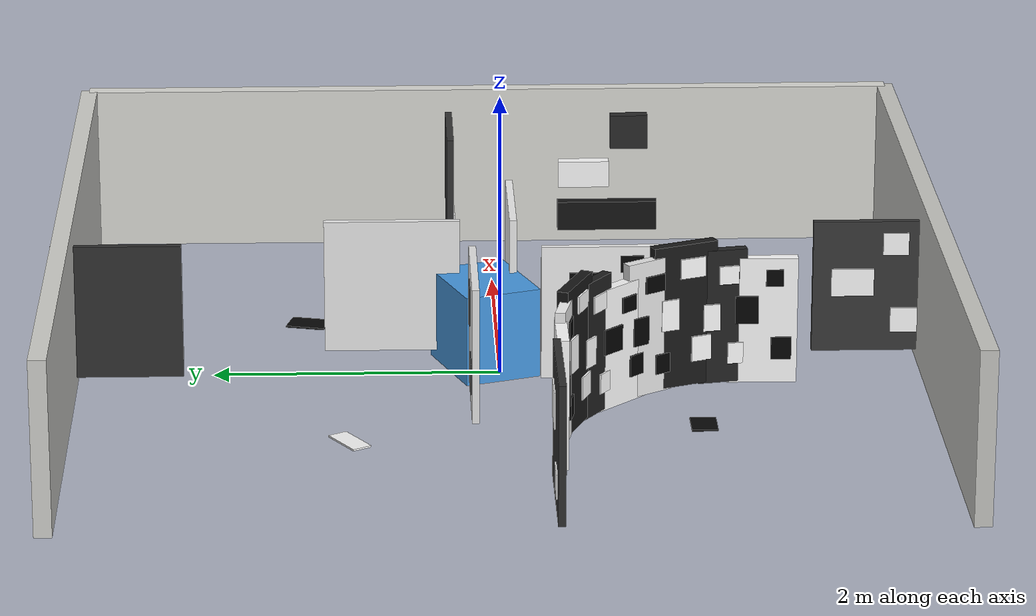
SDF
<sdf version="1.7">
 <world name="cuvslam_mapping_simple">
  <model name="north_wall">
   <static>true</static>
   <pose>0 3 0.6 0 0 0</pose>
   <link name="link">
    <collision name="collision"><geometry><box><size>6 0.12 1.2</size></box></geometry></collision>
    <visual name="visual">
     <geometry><box><size>6 0.12 1.2</size></box></geometry>
     <material><ambient>0.72 0.72 0.70 1</ambient><diffuse>0.82 0.82 0.80 1</diffuse></material>
    </visual>
   </link>
  </model>
  <model name="south_wall">
   <static>true</static>
   <pose>0 -3 0.6 0 0 0</pose>
   <link name="link">
    <collision name="collision"><geometry><box><size>6 0.12 1.2</size></box></geometry></collision>
    <visual name="visual">
     <geometry><box><size>6 0.12 1.2</size></box></geometry>
     <material><ambient>0.68 0.68 0.66 1</ambient><diffuse>0.78 0.78 0.76 1</diffuse></material>
    </visual>
   </link>
  </model>
  <model name="east_wall">
   <static>true</static>
   <pose>3 0 0.6 0 0 0</pose>
   <link name="link">
    <collision name="collision"><geometry><box><size>0.12 6 1.2</size></box></geometry></collision>
    <visual name="visual">
     <geometry><box><size>0.12 6 1.2</size></box></geometry>
     <material><ambient>0.76 0.76 0.74 1</ambient><diffuse>0.86 0.86 0.84 1</diffuse></material>
    </visual>
   </link>
  </model>
  <model name="east_landmark_stack">
   <static>true</static>
   <pose>2.90 -0.9 0 0 0 0</pose>
   <link name="link">
    <visual name="lower">
     <pose>0 0 0.22 0 0 0</pose>
     <geometry><box><size>0.10 0.75 0.22</size></box></geometry>
     <material><ambient>0.05 0.05 0.05 1</ambient><diffuse>0.08 0.08 0.08 1</diffuse></material>
    </visual>
    <visual name="middle">
     <pose>0 0.18 0.55 0 0 0</pose>
     <geometry><box><size>0.10 0.38 0.20</size></box></geometry>
     <material><ambient>0.95 0.95 0.95 1</ambient><diffuse>1 1 1 1</diffuse></material>
    </visual>
    <visual name="upper">
     <pose>0 -0.16 0.88 0 0 0</pose>
     <geometry><box><size>0.10 0.28 0.26</size></box></geometry>
     <material><ambient>0.12 0.12 0.12 1</ambient><diffuse>0.16 0.16 0.16 1</diffuse></material>
    </visual>
   </link>
  </model>
  <model name="center_crate">
   <static>true</static>
   <pose>0.15 0.10 0.32 0 0 0.35</pose>
   <link name="link">
    <collision name="collision"><geometry><box><size>0.70 0.55 0.64</size></box></geometry></collision>
    <visual name="visual">
     <geometry><box><size>0.70 0.55 0.64</size></box></geometry>
     <material><ambient>0.22 0.48 0.72 1</ambient><diffuse>0.28 0.60 0.88 1</diffuse></material>
    </visual>
   </link>
  </model>
  <model name="near_field_observability_boards">
   <static>true</static>
   <link name="link">
    <visual name="left_board">
     <pose>-0.30 -0.75 0.55 0 0 0</pose>
     <geometry><box><size>0.05 0.95 0.95</size></box></geometry>
     <material><ambient>0.88 0.88 0.88 1</ambient><diffuse>0.95 0.95 0.95 1</diffuse></material>
    </visual>
    <visual name="left_black_a">
     <pose>-0.328 -0.98 0.34 0 0 0</pose>
     <geometry><box><size>0.012 0.28 0.24</size></box></geometry>
     <material><ambient>0.02 0.02 0.02 1</ambient><diffuse>0.02 0.02 0.02 1</diffuse></material>
    </visual>
    <visual name="left_black_b">
     <pose>-0.328 -0.58 0.68 0 0 0</pose>
     <geometry><box><size>0.012 0.22 0.32</size></box></geometry>
     <material><ambient>0.02 0.02 0.02 1</ambient><diffuse>0.02 0.02 0.02 1</diffuse></material>
    </visual>
    <visual name="left_black_c">
     <pose>-0.328 -0.90 0.90 0 0 0</pose>
     <geometry><box><size>0.012 0.16 0.12</size></box></geometry>
     <material><ambient>0.02 0.02 0.02 1</ambient><diffuse>0.02 0.02 0.02 1</diffuse></material>
    </visual>
    <visual name="right_board">
     <pose>0.20 -2.65 0.55 0 0 0</pose>
     <geometry><box><size>0.05 0.90 0.95</size></box></geometry>
     <material><ambient>0.18 0.18 0.18 1</ambient><diffuse>0.22 0.22 0.22 1</diffuse></material>
    </visual>
    <visual name="right_white_a">
     <pose>0.172 -2.87 0.30 0 0 0</pose>
     <geometry><box><size>0.012 0.24 0.18</size></box></geometry>
     <material><ambient>0.98 0.98 0.98 1</ambient><diffuse>1 1 1 1</diffuse></material>
    </visual>
    <visual name="right_white_b">
     <pose>0.172 -2.48 0.58 0 0 0</pose>
     <geometry><box><size>0.012 0.30 0.20</size></box></geometry>
     <material><ambient>0.98 0.98 0.98 1</ambient><diffuse>1 1 1 1</diffuse></material>
    </visual>
    <visual name="right_white_c">
     <pose>0.172 -2.78 0.86 0 0 0</pose>
     <geometry><box><size>0.012 0.18 0.16</size></box></geometry>
     <material><ambient>0.98 0.98 0.98 1</ambient><diffuse>1 1 1 1</diffuse></material>
    </visual>
    <visual name="north_inner_board">
     <pose>0.75 -0.10 0.55 0 0 0</pose>
     <geometry><box><size>0.95 0.05 0.95</size></box></geometry>
     <material><ambient>0.86 0.86 0.86 1</ambient><diffuse>0.94 0.94 0.94 1</diffuse></material>
    </visual>
    <visual name="north_inner_black_a">
     <pose>0.52 -0.128 0.34 0 0 0</pose>
     <geometry><box><size>0.26 0.012 0.22</size></box></geometry>
     <material><ambient>0.02 0.02 0.02 1</ambient><diffuse>0.02 0.02 0.02 1</diffuse></material>
    </visual>
    <visual name="north_inner_black_b">
     <pose>0.92 -0.128 0.70 0 0 0</pose>
     <geometry><box><size>0.20 0.012 0.30</size></box></geometry>
     <material><ambient>0.02 0.02 0.02 1</ambient><diffuse>0.02 0.02 0.02 1</diffuse></material>
    </visual>
    <visual name="north_outer_board">
     <pose>2.65 0.30 0.55 0 0 0</pose>
     <geometry><box><size>0.90 0.05 0.95</size></box></geometry>
     <material><ambient>0.16 0.16 0.16 1</ambient><diffuse>0.20 0.20 0.20 1</diffuse></material>
    </visual>
    <visual name="north_outer_white_a">
     <pose>2.43 0.272 0.32 0 0 0</pose>
     <geometry><box><size>0.24 0.012 0.18</size></box></geometry>
     <material><ambient>0.98 0.98 0.98 1</ambient><diffuse>1 1 1 1</diffuse></material>
    </visual>
    <visual name="north_outer_white_b">
     <pose>2.82 0.272 0.67 0 0 0</pose>
     <geometry><box><size>0.28 0.012 0.24</size></box></geometry>
     <material><ambient>0.98 0.98 0.98 1</ambient><diffuse>1 1 1 1</diffuse></material>
    </visual>
    <visual name="west_inner_board">
     <pose>0.30 0.75 0.55 0 0 0</pose>
     <geometry><box><size>0.05 0.95 0.95</size></box></geometry>
     <material><ambient>0.84 0.84 0.84 1</ambient><diffuse>0.92 0.92 0.92 1</diffuse></material>
    </visual>
    <visual name="west_inner_black_a">
     <pose>0.328 0.52 0.33 0 0 0</pose>
     <geometry><box><size>0.012 0.25 0.20</size></box></geometry>
     <material><ambient>0.02 0.02 0.02 1</ambient><diffuse>0.02 0.02 0.02 1</diffuse></material>
    </visual>
    <visual name="west_inner_black_b">
     <pose>0.328 0.92 0.70 0 0 0</pose>
     <geometry><box><size>0.012 0.19 0.30</size></box></geometry>
     <material><ambient>0.02 0.02 0.02 1</ambient><diffuse>0.02 0.02 0.02 1</diffuse></material>
    </visual>
    <visual name="west_outer_board">
     <pose>-0.20 2.65 0.55 0 0 0</pose>
     <geometry><box><size>0.05 0.90 0.95</size></box></geometry>
     <material><ambient>0.15 0.15 0.15 1</ambient><diffuse>0.19 0.19 0.19 1</diffuse></material>
    </visual>
    <visual name="west_outer_white_a">
     <pose>-0.172 2.43 0.31 0 0 0</pose>
     <geometry><box><size>0.012 0.24 0.18</size></box></geometry>
     <material><ambient>0.98 0.98 0.98 1</ambient><diffuse>1 1 1 1</diffuse></material>
    </visual>
    <visual name="west_outer_white_b">
     <pose>-0.172 2.82 0.70 0 0 0</pose>
     <geometry><box><size>0.012 0.26 0.26</size></box></geometry>
     <material><ambient>0.98 0.98 0.98 1</ambient><diffuse>1 1 1 1</diffuse></material>
    </visual>
    <visual name="south_inner_board">
     <pose>-0.75 0.20 0.55 0 0 0</pose>
     <geometry><box><size>0.95 0.05 0.95</size></box></geometry>
     <material><ambient>0.82 0.82 0.82 1</ambient><diffuse>0.90 0.90 0.90 1</diffuse></material>
    </visual>
    <visual name="south_inner_black_a">
     <pose>-0.98 0.228 0.35 0 0 0</pose>
     <geometry><box><size>0.27 0.012 0.22</size></box></geometry>
     <material><ambient>0.02 0.02 0.02 1</ambient><diffuse>0.02 0.02 0.02 1</diffuse></material>
    </visual>
    <visual name="south_inner_black_b">
     <pose>-0.58 0.228 0.72 0 0 0</pose>
     <geometry><box><size>0.20 0.012 0.28</size></box></geometry>
     <material><ambient>0.02 0.02 0.02 1</ambient><diffuse>0.02 0.02 0.02 1</diffuse></material>
    </visual>
    <visual name="south_outer_board">
     <pose>-2.65 -0.30 0.55 0 0 0</pose>
     <geometry><box><size>0.90 0.05 0.95</size></box></geometry>
     <material><ambient>0.14 0.14 0.14 1</ambient><diffuse>0.18 0.18 0.18 1</diffuse></material>
    </visual>
    <visual name="south_outer_white_a">
     <pose>-2.87 -0.272 0.30 0 0 0</pose>
     <geometry><box><size>0.23 0.012 0.17</size></box></geometry>
     <material><ambient>0.98 0.98 0.98 1</ambient><diffuse>1 1 1 1</diffuse></material>
    </visual>
    <visual name="south_outer_white_b">
     <pose>-2.48 -0.272 0.68 0 0 0</pose>
     <geometry><box><size>0.29 0.012 0.25</size></box></geometry>
     <material><ambient>0.98 0.98 0.98 1</ambient><diffuse>1 1 1 1</diffuse></material>
    </visual>
    <visual name="floor_marker_a">
     <pose>-1.10 -1.35 0.008 0 0 0</pose>
     <geometry><box><size>0.24 0.18 0.012</size></box></geometry>
     <material><ambient>0.03 0.03 0.03 1</ambient><diffuse>0.03 0.03 0.03 1</diffuse></material>
    </visual>
    <visual name="floor_marker_b">
     <pose>1.35 -1.10 0.008 0 0 0.35</pose>
     <geometry><box><size>0.30 0.16 0.012</size></box></geometry>
     <material><ambient>0.94 0.94 0.94 1</ambient><diffuse>0.98 0.98 0.98 1</diffuse></material>
    </visual>
    <visual name="floor_marker_c">
     <pose>1.05 1.35 0.008 0 0 -0.25</pose>
     <geometry><box><size>0.20 0.28 0.012</size></box></geometry>
     <material><ambient>0.03 0.03 0.03 1</ambient><diffuse>0.03 0.03 0.03 1</diffuse></material>
    </visual>
    <visual name="floor_marker_d">
     <pose>-1.35 1.05 0.008 0 0 0.55</pose>
     <geometry><box><size>0.32 0.14 0.012</size></box></geometry>
     <material><ambient>0.94 0.94 0.94 1</ambient><diffuse>0.98 0.98 0.98 1</diffuse></material>
    </visual>
   </link>
  </model>
  <model name="dense_turn_feature_arc">
   <static>true</static>
   <link name="panel_east">
    <pose>-0.35 -1.80 0.50 0 0 0</pose>
    <visual name="panel">
     <geometry><box><size>0.08 0.48 0.90</size></box></geometry>
     <material><ambient>0.92 0.92 0.92 1</ambient><diffuse>1 1 1 1</diffuse></material>
    </visual>
    <visual name="patch_a">
     <pose>-0.046 -0.13 -0.20 0 0 0</pose>
     <geometry><box><size>0.012 0.14 0.16</size></box></geometry>
     <material><ambient>0.02 0.02 0.02 1</ambient><diffuse>0.02 0.02 0.02 1</diffuse></material>
    </visual>
    <visual name="patch_b">
     <pose>-0.046 0.11 0.08 0 0 0</pose>
     <geometry><box><size>0.012 0.16 0.20</size></box></geometry>
     <material><ambient>0.02 0.02 0.02 1</ambient><diffuse>0.02 0.02 0.02 1</diffuse></material>
    </visual>
    <visual name="patch_c">
     <pose>-0.046 -0.08 0.31 0 0 0</pose>
     <geometry><box><size>0.012 0.12 0.12</size></box></geometry>
     <material><ambient>0.02 0.02 0.02 1</ambient><diffuse>0.02 0.02 0.02 1</diffuse></material>
    </visual>
   </link>
   <link name="panel_northeast_low">
    <pose>-0.46 -1.245 0.58 0 0 0.392699</pose>
    <visual name="panel">
     <geometry><box><size>0.08 0.48 1.02</size></box></geometry>
     <material><ambient>0.08 0.08 0.08 1</ambient><diffuse>0.10 0.10 0.10 1</diffuse></material>
    </visual>
    <visual name="patch_a">
     <pose>-0.046 -0.12 -0.25 0 0 0</pose>
     <geometry><box><size>0.012 0.15 0.18</size></box></geometry>
     <material><ambient>0.98 0.98 0.98 1</ambient><diffuse>1 1 1 1</diffuse></material>
    </visual>
    <visual name="patch_b">
     <pose>-0.046 0.12 0.02 0 0 0</pose>
     <geometry><box><size>0.012 0.13 0.22</size></box></geometry>
     <material><ambient>0.98 0.98 0.98 1</ambient><diffuse>1 1 1 1</diffuse></material>
    </visual>
    <visual name="patch_c">
     <pose>-0.046 -0.05 0.34 0 0 0</pose>
     <geometry><box><size>0.012 0.19 0.14</size></box></geometry>
     <material><ambient>0.98 0.98 0.98 1</ambient><diffuse>1 1 1 1</diffuse></material>
    </visual>
   </link>
   <link name="panel_northeast">
    <pose>-0.775 -0.775 0.48 0 0 0.785398</pose>
    <visual name="panel">
     <geometry><box><size>0.08 0.52 0.86</size></box></geometry>
     <material><ambient>0.90 0.90 0.90 1</ambient><diffuse>0.98 0.98 0.98 1</diffuse></material>
    </visual>
    <visual name="patch_a">
     <pose>-0.046 -0.15 -0.18 0 0 0</pose>
     <geometry><box><size>0.012 0.13 0.15</size></box></geometry>
     <material><ambient>0.01 0.01 0.01 1</ambient><diffuse>0.01 0.01 0.01 1</diffuse></material>
    </visual>
    <visual name="patch_b">
     <pose>-0.046 0.09 0.06 0 0 0</pose>
     <geometry><box><size>0.012 0.18 0.18</size></box></geometry>
     <material><ambient>0.01 0.01 0.01 1</ambient><diffuse>0.01 0.01 0.01 1</diffuse></material>
    </visual>
    <visual name="patch_c">
     <pose>-0.046 -0.07 0.28 0 0 0</pose>
     <geometry><box><size>0.012 0.14 0.11</size></box></geometry>
     <material><ambient>0.01 0.01 0.01 1</ambient><diffuse>0.01 0.01 0.01 1</diffuse></material>
    </visual>
   </link>
   <link name="panel_northeast_lower_transition">
    <pose>-0.594 -0.995 0.54 0 0 0.589049</pose>
    <visual name="panel">
     <geometry><box><size>0.07 0.38 0.96</size></box></geometry>
     <material><ambient>0.82 0.82 0.82 1</ambient><diffuse>0.90 0.90 0.90 1</diffuse></material>
    </visual>
    <visual name="patch_a">
     <pose>-0.041 -0.10 -0.28 0 0 0</pose>
     <geometry><box><size>0.012 0.12 0.14</size></box></geometry>
     <material><ambient>0.01 0.01 0.01 1</ambient><diffuse>0.01 0.01 0.01 1</diffuse></material>
    </visual>
    <visual name="patch_b">
     <pose>-0.041 0.09 -0.01 0 0 0</pose>
     <geometry><box><size>0.012 0.13 0.20</size></box></geometry>
     <material><ambient>0.01 0.01 0.01 1</ambient><diffuse>0.01 0.01 0.01 1</diffuse></material>
    </visual>
    <visual name="patch_c">
     <pose>-0.041 -0.03 0.31 0 0 0</pose>
     <geometry><box><size>0.012 0.16 0.12</size></box></geometry>
     <material><ambient>0.01 0.01 0.01 1</ambient><diffuse>0.01 0.01 0.01 1</diffuse></material>
    </visual>
   </link>
   <link name="panel_northeast_upper_transition">
    <pose>-0.995 -0.594 0.54 0 0 0.981748</pose>
    <visual name="panel">
     <geometry><box><size>0.07 0.38 0.96</size></box></geometry>
     <material><ambient>0.10 0.10 0.10 1</ambient><diffuse>0.12 0.12 0.12 1</diffuse></material>
    </visual>
    <visual name="patch_a">
     <pose>-0.041 -0.10 -0.28 0 0 0</pose>
     <geometry><box><size>0.012 0.12 0.14</size></box></geometry>
     <material><ambient>0.98 0.98 0.98 1</ambient><diffuse>1 1 1 1</diffuse></material>
    </visual>
    <visual name="patch_b">
     <pose>-0.041 0.09 -0.01 0 0 0</pose>
     <geometry><box><size>0.012 0.13 0.20</size></box></geometry>
     <material><ambient>0.98 0.98 0.98 1</ambient><diffuse>1 1 1 1</diffuse></material>
    </visual>
    <visual name="patch_c">
     <pose>-0.041 -0.03 0.31 0 0 0</pose>
     <geometry><box><size>0.012 0.16 0.12</size></box></geometry>
     <material><ambient>0.98 0.98 0.98 1</ambient><diffuse>1 1 1 1</diffuse></material>
    </visual>
   </link>
   <link name="panel_northwest_high">
    <pose>-1.245 -0.46 0.58 0 0 1.178097</pose>
    <visual name="panel">
     <geometry><box><size>0.08 0.48 1.02</size></box></geometry>
     <material><ambient>0.07 0.07 0.07 1</ambient><diffuse>0.09 0.09 0.09 1</diffuse></material>
    </visual>
    <visual name="patch_a">
     <pose>-0.046 -0.11 -0.26 0 0 0</pose>
     <geometry><box><size>0.012 0.16 0.16</size></box></geometry>
     <material><ambient>0.98 0.98 0.98 1</ambient><diffuse>1 1 1 1</diffuse></material>
    </visual>
    <visual name="patch_b">
     <pose>-0.046 0.13 0.04 0 0 0</pose>
     <geometry><box><size>0.012 0.14 0.24</size></box></geometry>
     <material><ambient>0.98 0.98 0.98 1</ambient><diffuse>1 1 1 1</diffuse></material>
    </visual>
    <visual name="patch_c">
     <pose>-0.046 -0.04 0.36 0 0 0</pose>
     <geometry><box><size>0.012 0.18 0.12</size></box></geometry>
     <material><ambient>0.98 0.98 0.98 1</ambient><diffuse>1 1 1 1</diffuse></material>
    </visual>
   </link>
   <link name="panel_north">
    <pose>-1.80 -0.35 0.50 0 0 1.570796</pose>
    <visual name="panel">
     <geometry><box><size>0.08 0.48 0.90</size></box></geometry>
     <material><ambient>0.91 0.91 0.91 1</ambient><diffuse>1 1 1 1</diffuse></material>
    </visual>
    <visual name="patch_a">
     <pose>-0.046 -0.13 -0.20 0 0 0</pose>
     <geometry><box><size>0.012 0.14 0.16</size></box></geometry>
     <material><ambient>0.02 0.02 0.02 1</ambient><diffuse>0.02 0.02 0.02 1</diffuse></material>
    </visual>
    <visual name="patch_b">
     <pose>-0.046 0.11 0.08 0 0 0</pose>
     <geometry><box><size>0.012 0.16 0.20</size></box></geometry>
     <material><ambient>0.02 0.02 0.02 1</ambient><diffuse>0.02 0.02 0.02 1</diffuse></material>
    </visual>
    <visual name="patch_c">
     <pose>-0.046 -0.08 0.31 0 0 0</pose>
     <geometry><box><size>0.012 0.12 0.12</size></box></geometry>
     <material><ambient>0.02 0.02 0.02 1</ambient><diffuse>0.02 0.02 0.02 1</diffuse></material>
    </visual>
   </link>
   <link name="panel_east_transition">
    <pose>-0.378 -1.517 0.54 0 0 0.196350</pose>
    <visual name="panel">
     <geometry><box><size>0.07 0.34 0.96</size></box></geometry>
     <material><ambient>0.12 0.12 0.12 1</ambient><diffuse>0.14 0.14 0.14 1</diffuse></material>
    </visual>
    <visual name="patch_a">
     <pose>-0.041 -0.09 -0.27 0 0 0</pose>
     <geometry><box><size>0.012 0.11 0.15</size></box></geometry>
     <material><ambient>0.98 0.98 0.98 1</ambient><diffuse>1 1 1 1</diffuse></material>
    </visual>
    <visual name="patch_b">
     <pose>-0.041 0.08 0.00 0 0 0</pose>
     <geometry><box><size>0.012 0.12 0.19</size></box></geometry>
     <material><ambient>0.98 0.98 0.98 1</ambient><diffuse>1 1 1 1</diffuse></material>
    </visual>
    <visual name="patch_c">
     <pose>-0.041 -0.04 0.30 0 0 0</pose>
     <geometry><box><size>0.012 0.14 0.13</size></box></geometry>
     <material><ambient>0.98 0.98 0.98 1</ambient><diffuse>1 1 1 1</diffuse></material>
    </visual>
   </link>
   <link name="panel_north_transition">
    <pose>-1.517 -0.378 0.54 0 0 1.374447</pose>
    <visual name="panel">
     <geometry><box><size>0.07 0.34 0.96</size></box></geometry>
     <material><ambient>0.88 0.88 0.88 1</ambient><diffuse>0.96 0.96 0.96 1</diffuse></material>
    </visual>
    <visual name="patch_a">
     <pose>-0.041 -0.09 -0.27 0 0 0</pose>
     <geometry><box><size>0.012 0.11 0.15</size></box></geometry>
     <material><ambient>0.01 0.01 0.01 1</ambient><diffuse>0.01 0.01 0.01 1</diffuse></material>
    </visual>
    <visual name="patch_b">
     <pose>-0.041 0.08 0.00 0 0 0</pose>
     <geometry><box><size>0.012 0.12 0.19</size></box></geometry>
     <material><ambient>0.01 0.01 0.01 1</ambient><diffuse>0.01 0.01 0.01 1</diffuse></material>
    </visual>
    <visual name="patch_c">
     <pose>-0.041 -0.04 0.30 0 0 0</pose>
     <geometry><box><size>0.012 0.14 0.13</size></box></geometry>
     <material><ambient>0.01 0.01 0.01 1</ambient><diffuse>0.01 0.01 0.01 1</diffuse></material>
    </visual>
   </link>
  </model>
 </world>
</sdf>
